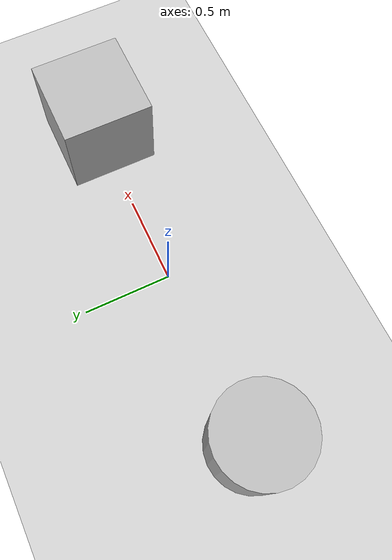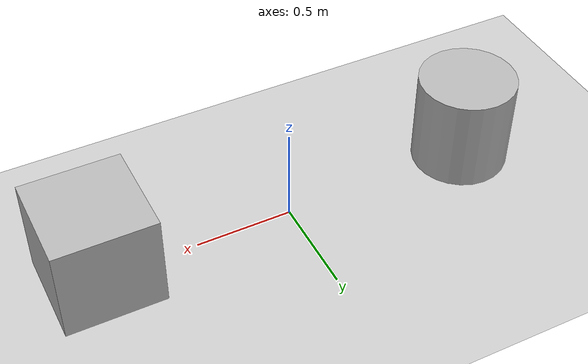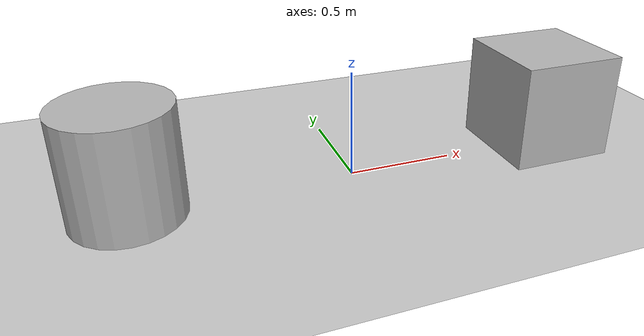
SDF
<?xml version="1.0" ?>
<sdf version="1.6">
  <world name="primitive_world">

    <!-- Physics -->
    <physics type="ode">
      <max_step_size>0.001</max_step_size>
      <real_time_factor>1</real_time_factor>
    </physics>

    <!-- Light (inline, NOT model://sun) -->
    <light name="sun" type="directional">
      <pose>0 0 10 0 0 0</pose>
      <direction>-0.5 0.1 -1</direction>
    </light>

    <!-- Ground (inline, NOT model://ground_plane) -->
    <model name="ground">
      <static>true</static>
      <link name="link">
        <collision name="collision">
          <geometry>
            <plane>
              <normal>0 0 1</normal>
              <size>50 50</size>
            </plane>
          </geometry>
        </collision>
        <visual name="visual">
          <geometry>
            <plane>
              <normal>0 0 1</normal>
              <size>50 50</size>
            </plane>
          </geometry>
          <material>
            <ambient>0.8 0.8 0.8 1</ambient>
          </material>
        </visual>
      </link>
    </model>

    <!-- BOX obstacle -->
    <model name="box">
      <static>true</static>
      <pose>1 0 0.25 0 0 0</pose>
      <link name="link">
        <collision name="collision">
          <geometry>
            <box><size>0.5 0.5 0.5</size></box>
          </geometry>
        </collision>
        <visual name="visual">
          <geometry>
            <box><size>0.5 0.5 0.5</size></box>
          </geometry>
        </visual>
      </link>
    </model>

    <!-- CYLINDER obstacle -->
    <model name="cylinder">
      <static>true</static>
      <pose>-1 0 0.25 0 0 0</pose>
      <link name="link">
        <collision name="collision">
          <geometry>
            <cylinder>
              <radius>0.25</radius>
              <length>0.5</length>
            </cylinder>
          </geometry>
        </collision>
        <visual name="visual">
          <geometry>
            <cylinder>
              <radius>0.25</radius>
              <length>0.5</length>
            </cylinder>
          </geometry>
        </visual>
      </link>
    </model>

  </world>
</sdf>
